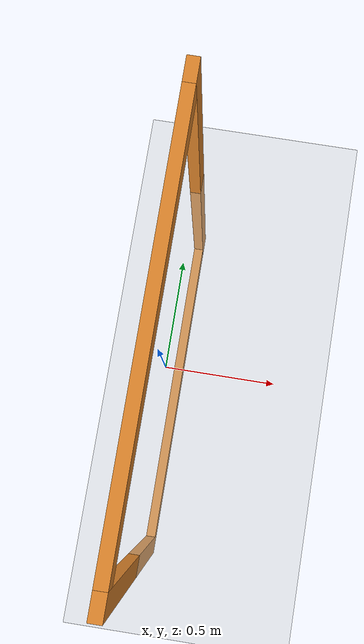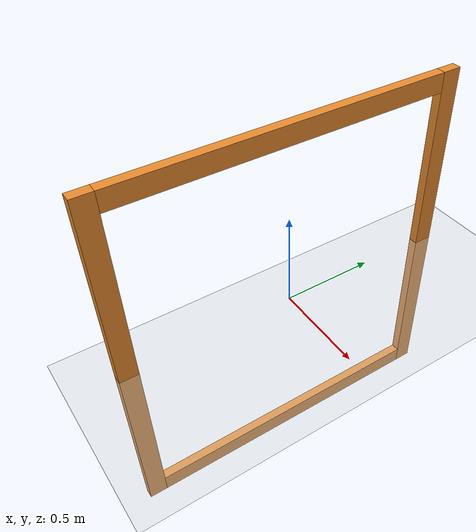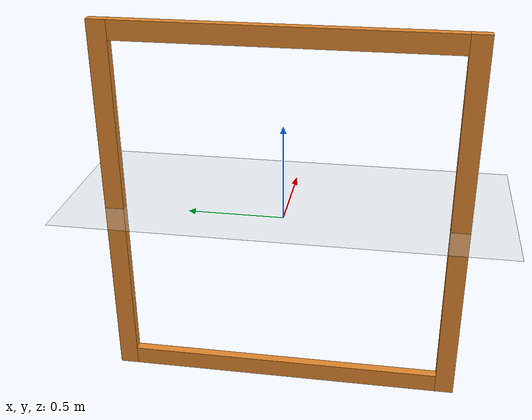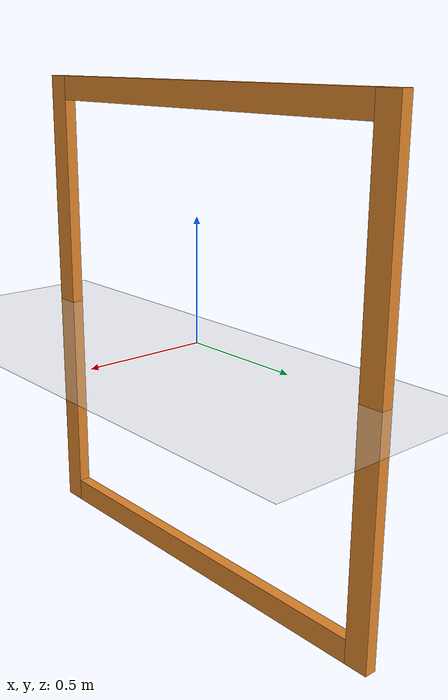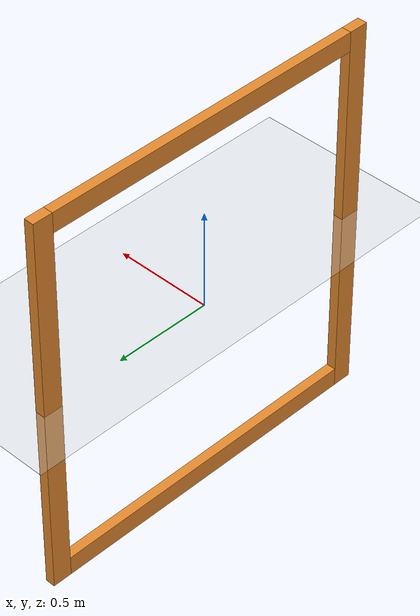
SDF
<sdf version="1.4">
 <world name="smart_drone_simple_world">
  <include><uri>model://ground_plane</uri></include>
  <include><uri>model://sun</uri></include>
  <model name="smart_drone_orange_gate1">
   <link name="left">
    <pose>0 -0.9 0 0 -0 0</pose>
    <inertial>
     <mass>1</mass>
     <inertia>
      <ixx>0.166667</ixx>
      <ixy>0</ixy>
      <ixz>0</ixz>
      <iyy>0.166667</iyy>
      <iyz>0</iyz>
      <izz>0.166667</izz>
     </inertia>
     <pose>0 -0.9 0 0 -0 0</pose>
    </inertial>
    <visual name="visual">
     <geometry><box><size>0.05 0.1 2</size></box></geometry>
     <material>
      <lighting>1</lighting>
      <script><uri>file://media/materials/scripts/gazebo.material</uri><name>Gazebo/Grey</name></script>
      <shader type="pixel"><normal_map>__default__</normal_map></shader>
      <ambient>0.9 0.54 0.18 1</ambient>
      <diffuse>0.9 0.54 0.18 1</diffuse>
      <specular>0.9 0.54 0.18 1</specular>
      <emissive>0 0 0 1</emissive>
     </material>
    </visual>
    <collision name="collision">
     <geometry><box><size>0.05 0.1 2</size></box></geometry>
     <surface>
      <friction>
       <ode><mu>1</mu><mu2>1</mu2><fdir1>0 0 0</fdir1><slip1>0</slip1><slip2>0</slip2></ode>
       <torsional>
        <coefficient>1</coefficient>
        <patch_radius>0</patch_radius>
        <surface_radius>0</surface_radius>
        <use_patch_radius>1</use_patch_radius>
        <ode><slip>0</slip></ode>
       </torsional>
      </friction>
      <bounce><restitution_coefficient>0</restitution_coefficient><threshold>1e+06</threshold></bounce>
      <contact>
       <collide_without_contact>0</collide_without_contact>
       <collide_without_contact_bitmask>1</collide_without_contact_bitmask>
       <collide_bitmask>1</collide_bitmask>
       <ode>
        <soft_cfm>0</soft_cfm>
        <soft_erp>0.2</soft_erp>
        <kp>1e+13</kp>
        <kd>1</kd>
        <max_vel>0.01</max_vel>
        <min_depth>0</min_depth>
       </ode>
       <bullet>
        <split_impulse>1</split_impulse>
        <split_impulse_penetration_threshold>-0.01</split_impulse_penetration_threshold>
        <soft_cfm>0</soft_cfm>
        <soft_erp>0.2</soft_erp>
        <kp>1e+13</kp>
        <kd>1</kd>
       </bullet>
      </contact>
     </surface>
    </collision>
   </link>
   <link name="top">
    <pose>0 0 0.95 0 -0 0</pose>
    <inertial>
     <mass>1</mass>
     <inertia>
      <ixx>0.166667</ixx>
      <ixy>0</ixy>
      <ixz>0</ixz>
      <iyy>0.166667</iyy>
      <iyz>0</iyz>
      <izz>0.166667</izz>
     </inertia>
     <pose>0 0 0.95 0 -0 0</pose>
    </inertial>
    <visual name="visual">
     <geometry><box><size>0.05 1.7 0.1</size></box></geometry>
     <material>
      <lighting>1</lighting>
      <script><uri>file://media/materials/scripts/gazebo.material</uri><name>Gazebo/Grey</name></script>
      <shader type="pixel"><normal_map>__default__</normal_map></shader>
      <ambient>0.9 0.54 0.18 1</ambient>
      <diffuse>0.9 0.54 0.18 1</diffuse>
      <specular>0.9 0.54 0.18 1</specular>
      <emissive>0 0 0 1</emissive>
     </material>
    </visual>
    <collision name="collision">
     <geometry><box><size>0.05 1.7 0.1</size></box></geometry>
     <surface>
      <friction>
       <ode><mu>1</mu><mu2>1</mu2><fdir1>0 0 0</fdir1><slip1>0</slip1><slip2>0</slip2></ode>
       <torsional>
        <coefficient>1</coefficient>
        <patch_radius>0</patch_radius>
        <surface_radius>0</surface_radius>
        <use_patch_radius>1</use_patch_radius>
        <ode><slip>0</slip></ode>
       </torsional>
      </friction>
      <bounce><restitution_coefficient>0</restitution_coefficient><threshold>1e+06</threshold></bounce>
      <contact>
       <collide_without_contact>0</collide_without_contact>
       <collide_without_contact_bitmask>1</collide_without_contact_bitmask>
       <collide_bitmask>1</collide_bitmask>
       <ode>
        <soft_cfm>0</soft_cfm>
        <soft_erp>0.2</soft_erp>
        <kp>1e+13</kp>
        <kd>1</kd>
        <max_vel>0.01</max_vel>
        <min_depth>0</min_depth>
       </ode>
       <bullet>
        <split_impulse>1</split_impulse>
        <split_impulse_penetration_threshold>-0.01</split_impulse_penetration_threshold>
        <soft_cfm>0</soft_cfm>
        <soft_erp>0.2</soft_erp>
        <kp>1e+13</kp>
        <kd>1</kd>
       </bullet>
      </contact>
     </surface>
    </collision>
   </link>
   <link name="bot">
    <pose>0 0 -0.95 0 -0 0</pose>
    <inertial>
     <mass>1</mass>
     <inertia>
      <ixx>0.166667</ixx>
      <ixy>0</ixy>
      <ixz>0</ixz>
      <iyy>0.166667</iyy>
      <iyz>0</iyz>
      <izz>0.166667</izz>
     </inertia>
     <pose>0 0 -0.95 0 -0 0</pose>
    </inertial>
    <visual name="visual">
     <geometry><box><size>0.05 1.7 0.1</size></box></geometry>
     <material>
      <lighting>1</lighting>
      <script><uri>file://media/materials/scripts/gazebo.material</uri><name>Gazebo/Grey</name></script>
      <shader type="pixel"><normal_map>__default__</normal_map></shader>
      <ambient>0.9 0.54 0.18 1</ambient>
      <diffuse>0.9 0.54 0.18 1</diffuse>
      <specular>0.9 0.54 0.18 1</specular>
      <emissive>0 0 0 1</emissive>
     </material>
    </visual>
    <collision name="collision">
     <geometry><box><size>0.05 1.7 0.1</size></box></geometry>
     <surface>
      <friction>
       <ode><mu>1</mu><mu2>1</mu2><fdir1>0 0 0</fdir1><slip1>0</slip1><slip2>0</slip2></ode>
       <torsional>
        <coefficient>1</coefficient>
        <patch_radius>0</patch_radius>
        <surface_radius>0</surface_radius>
        <use_patch_radius>1</use_patch_radius>
        <ode><slip>0</slip></ode>
       </torsional>
      </friction>
      <bounce><restitution_coefficient>0</restitution_coefficient><threshold>1e+06</threshold></bounce>
      <contact>
       <collide_without_contact>0</collide_without_contact>
       <collide_without_contact_bitmask>1</collide_without_contact_bitmask>
       <collide_bitmask>1</collide_bitmask>
       <ode>
        <soft_cfm>0</soft_cfm>
        <soft_erp>0.2</soft_erp>
        <kp>1e+13</kp>
        <kd>1</kd>
        <max_vel>0.01</max_vel>
        <min_depth>0</min_depth>
       </ode>
       <bullet>
        <split_impulse>1</split_impulse>
        <split_impulse_penetration_threshold>-0.01</split_impulse_penetration_threshold>
        <soft_cfm>0</soft_cfm>
        <soft_erp>0.2</soft_erp>
        <kp>1e+13</kp>
        <kd>1</kd>
       </bullet>
      </contact>
     </surface>
    </collision>
   </link>
   <link name="right">
    <pose>0 0.9 0 0 -0 0</pose>
    <inertial>
     <mass>1</mass>
     <inertia>
      <ixx>0.166667</ixx>
      <ixy>0</ixy>
      <ixz>0</ixz>
      <iyy>0.166667</iyy>
      <iyz>0</iyz>
      <izz>0.166667</izz>
     </inertia>
     <pose>0 0.9 0 0 -0 0</pose>
    </inertial>
    <visual name="visual">
     <geometry><box><size>0.05 0.1 2</size></box></geometry>
     <material>
      <lighting>1</lighting>
      <script><uri>file://media/materials/scripts/gazebo.material</uri><name>Gazebo/Grey</name></script>
      <shader type="pixel"><normal_map>__default__</normal_map></shader>
      <ambient>0.9 0.54 0.18 1</ambient>
      <diffuse>0.9 0.54 0.18 1</diffuse>
      <specular>0.9 0.54 0.18 1</specular>
      <emissive>0 0 0 1</emissive>
     </material>
    </visual>
    <collision name="collision">
     <geometry><box><size>0.05 0.1 2</size></box></geometry>
     <surface>
      <friction>
       <ode><mu>1</mu><mu2>1</mu2><fdir1>0 0 0</fdir1><slip1>0</slip1><slip2>0</slip2></ode>
       <torsional>
        <coefficient>1</coefficient>
        <patch_radius>0</patch_radius>
        <surface_radius>0</surface_radius>
        <use_patch_radius>1</use_patch_radius>
        <ode><slip>0</slip></ode>
       </torsional>
      </friction>
      <bounce><restitution_coefficient>0</restitution_coefficient><threshold>1e+06</threshold></bounce>
      <contact>
       <collide_without_contact>0</collide_without_contact>
       <collide_without_contact_bitmask>1</collide_without_contact_bitmask>
       <collide_bitmask>1</collide_bitmask>
       <ode>
        <soft_cfm>0</soft_cfm>
        <soft_erp>0.2</soft_erp>
        <kp>1e+13</kp>
        <kd>1</kd>
        <max_vel>0.01</max_vel>
        <min_depth>0</min_depth>
       </ode>
       <bullet>
        <split_impulse>1</split_impulse>
        <split_impulse_penetration_threshold>-0.01</split_impulse_penetration_threshold>
        <soft_cfm>0</soft_cfm>
        <soft_erp>0.2</soft_erp>
        <kp>1e+13</kp>
        <kd>1</kd>
       </bullet>
      </contact>
     </surface>
    </collision>
   </link>
   <static>1</static>
  </model>
 </world>
</sdf>
